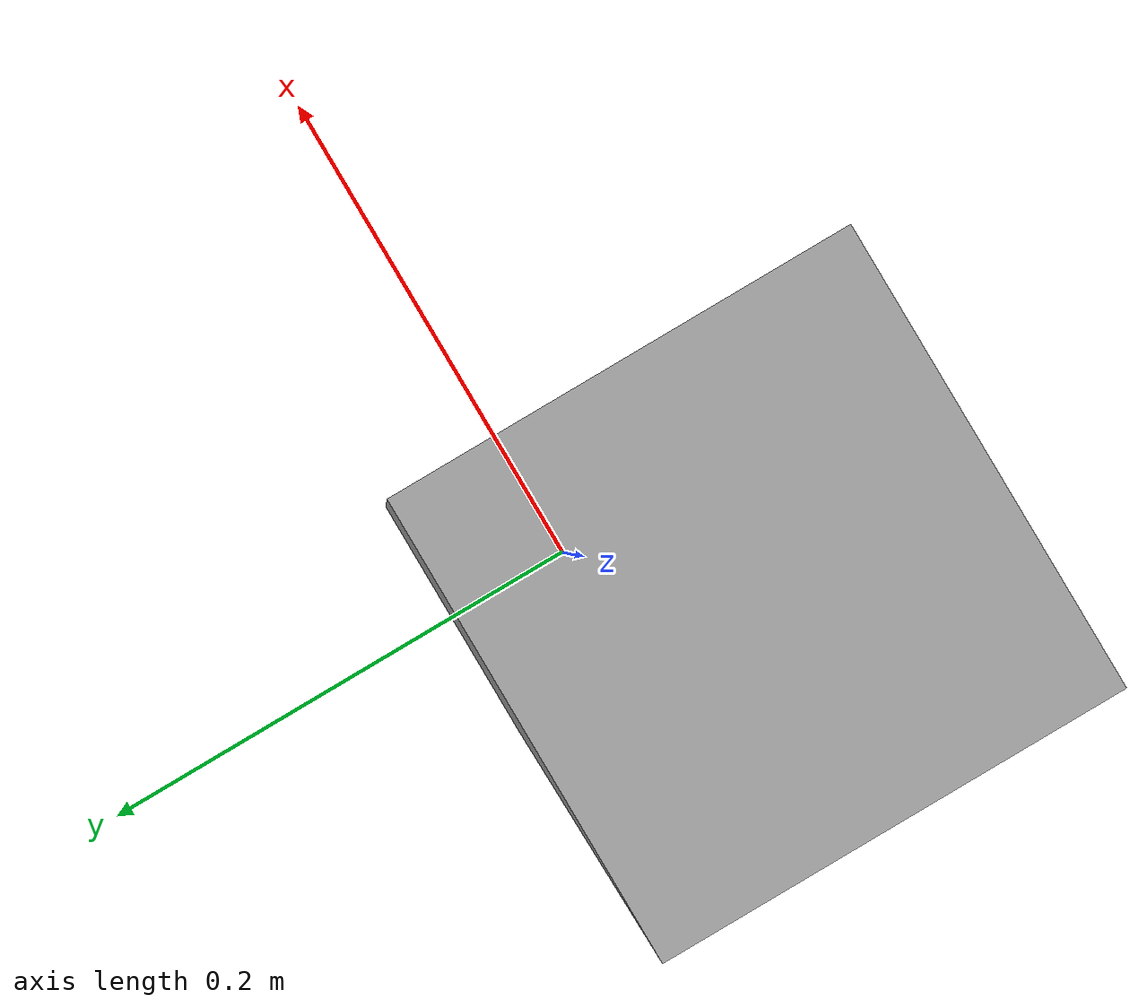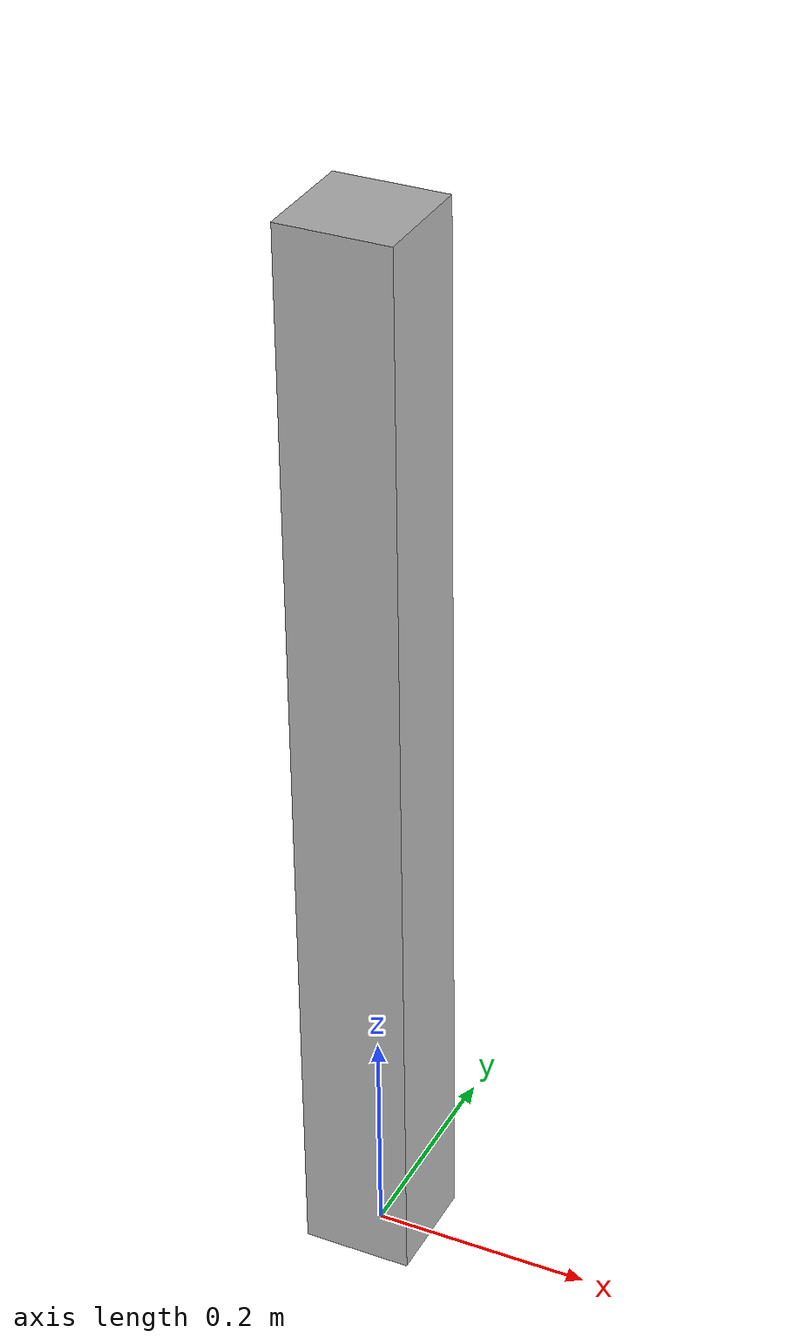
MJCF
<mujoco model="one_dof_prismatic">
  <compiler angle="radian"/>
  <option timestep="0.002" integrator="RK4" gravity="0 0 0"/>

  <worldbody>
    <body name="link1">
      <inertial pos="0 0 0.5" mass="1" diaginertia="0.01 0.01 0.001"/>
      <joint name="joint1" type="slide" pos="0 0 0" axis="0 0 1" range="-1 1" limited="true"/>
      <geom size="0.05 0.05 0.5" pos="0 0 0.5" type="box" rgba="0.7 0.7 0.7 1"/>
    </body>
  </worldbody>

  <actuator>
    <general name="joint1" joint="joint1" ctrlrange="-1 1"/>
  </actuator>

</mujoco>
